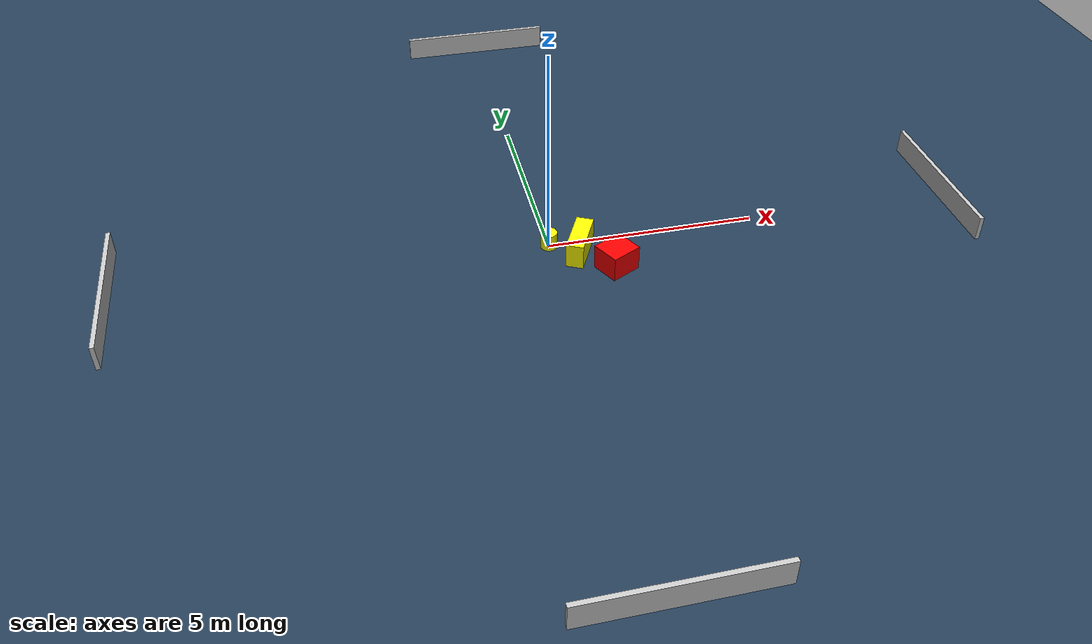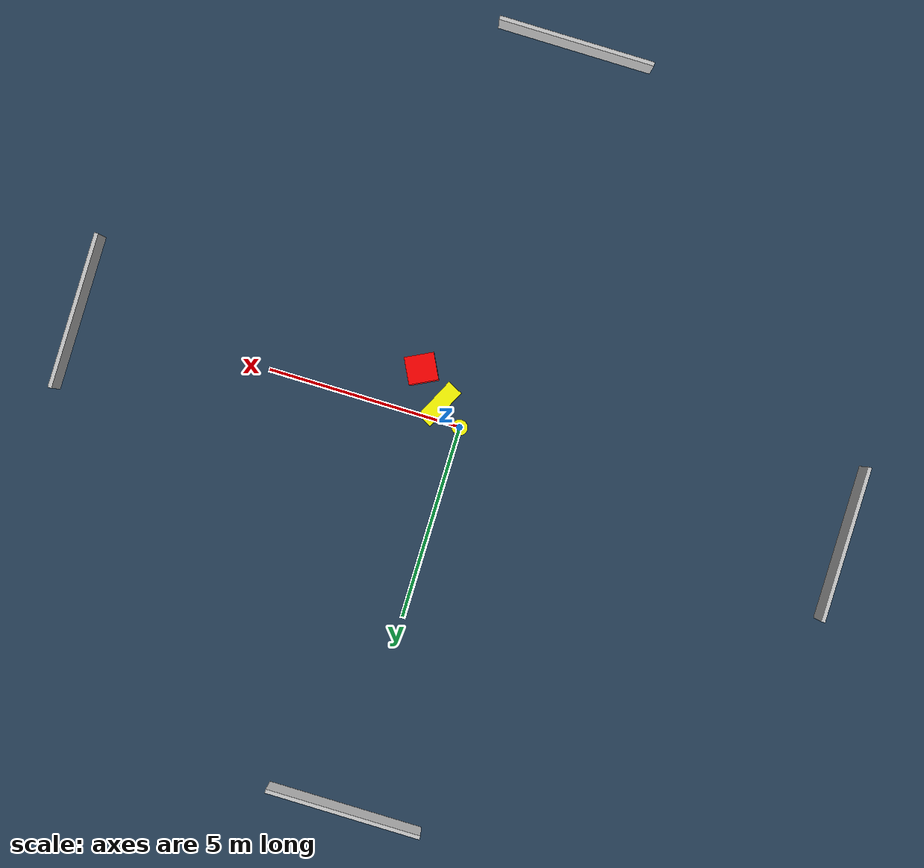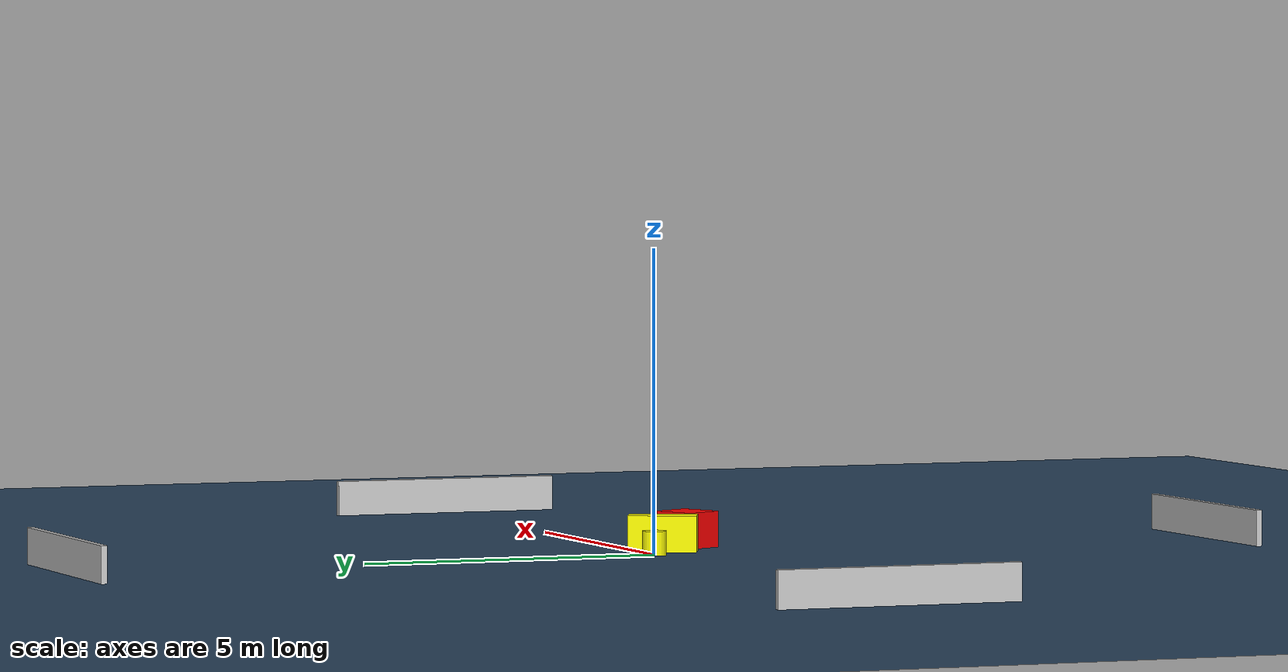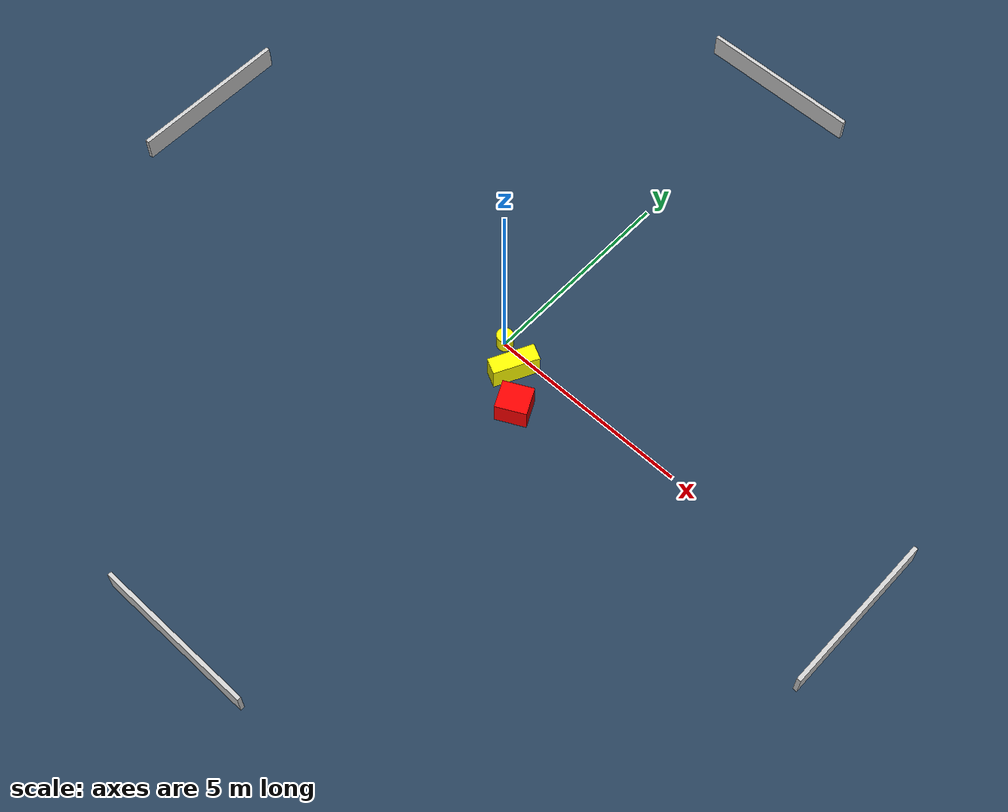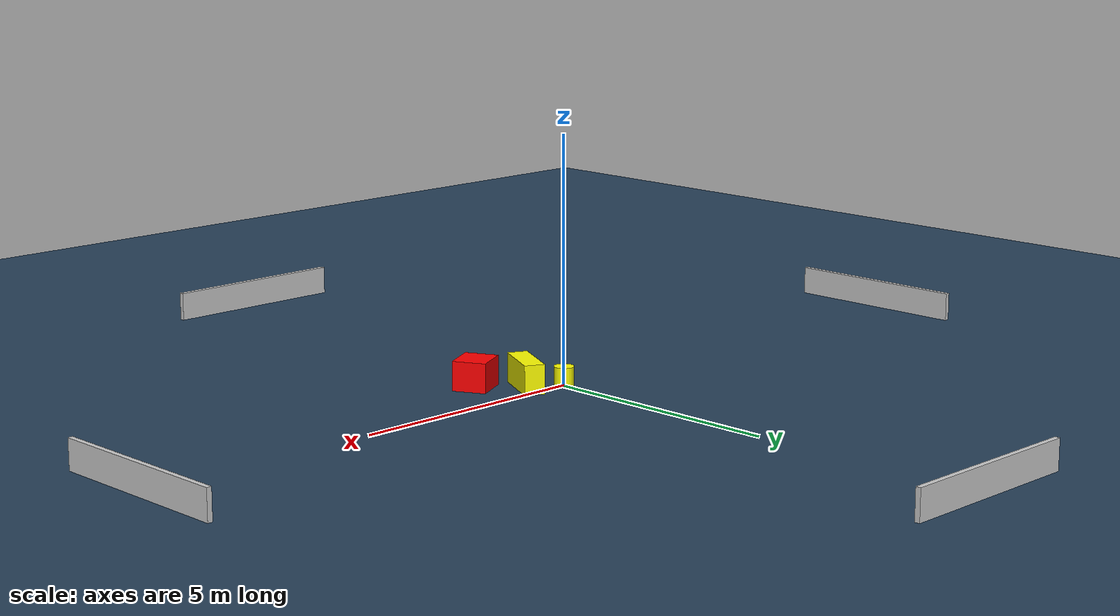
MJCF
<?xml version="1.0" ?>
<mujoco model="generated_environment">
  <option timestep="0.01" integrator="RK4" cone="elliptic"/>
  <default>
    <geom density="1"/>
  </default>
  <asset>
    <texture builtin="gradient" height="3072" name="skybox" rgb1="0.3 0.5 0.7" rgb2="0 0 0" type="skybox" width="512"/>
    <texture builtin="checker" height="300" name="groundplane" rgb1="0.2 0.3 0.4" rgb2="0.1 0.2 0.3" type="2d" width="300"/>
    <material name="groundplane" reflectance="0.2" texrepeat="5 5" texture="groundplane"/>
  </asset>
  <worldbody>
    <light dir="0 0 -1" directional="true" pos="0 0 1.5"/>
    <geom condim="3" friction="0.5 0.005 0.001" material="groundplane" name="floor" pos="0 0 0" size="0 0 0.05" type="plane"/>
    <body name="walls">
      <geom name="wall_1" condim="4" pos="-10.0 0.0 0.3" rgba="0.800000011920929 0.800000011920929 0.800000011920929 1.0" size="0.05 2.0 0.3" type="box"/>
      <geom name="wall_2" condim="4" pos="10.0 0.0 0.3" rgba="0.800000011920929 0.800000011920929 0.800000011920929 1.0" size="0.05 2.0 0.3" type="box"/>
      <geom name="wall_3" condim="4" pos="0.0 -10.0 0.3" rgba="0.800000011920929 0.800000011920929 0.800000011920929 1.0" size="2.0 0.05 0.3" type="box"/>
      <geom name="wall_4" condim="4" pos="0.0 10.0 0.3" rgba="0.800000011920929 0.800000011920929 0.800000011920929 1.0" size="2.0 0.05 0.3" type="box"/>
    </body>
    <body name="robot">
      <joint name="joint_x" type="slide" pos="0 0 0" axis="1 0 0"/>
      <joint name="joint_y" type="slide" pos="0 0 0" axis="0 1 0"/>
      <geom name="robot" type="cylinder" pos="0.0 0.0 0.2" size="0.2 0.2 0.0" mass="5.0" friction="1.0 0.005 0.0001" condim="4" rgba="1.0 1.0 0.0 1.0"/>
    </body>
    <body name="obstacle_1_movable">
      <geom name="obstacle_1_movable" condim="4" pos="0.6485539410650798 -0.4109365787212679 0.3" euler="0 0 333.5319505746883" friction="0.0 0.005 0.001" rgba="1.0 1.0 0.0 1.0" size="0.20517838327010215 0.5643614295708759 0.3" type="box" mass="0.1"/>
      <joint type="free"/>
    </body>
    <body name="obstacle_2_static">
      <geom name="obstacle_2_static" condim="4" pos="1.3372769932682362 -1.1243225474287235 0.3" euler="0 0 27.005131984474446" friction="0.0 0.005 0.001" rgba="1.0 0.0 0.0 1.0" size="0.3753564183357574 0.3452620669531188 0.3" type="box"/>
    </body>
  </worldbody>
  <actuator>
    <motor name="actuator_x" joint="joint_x" gear="1" ctrlrange="-1 1"/>
    <motor name="actuator_y" joint="joint_y" gear="1" ctrlrange="-1 1"/>
  </actuator>
</mujoco>
